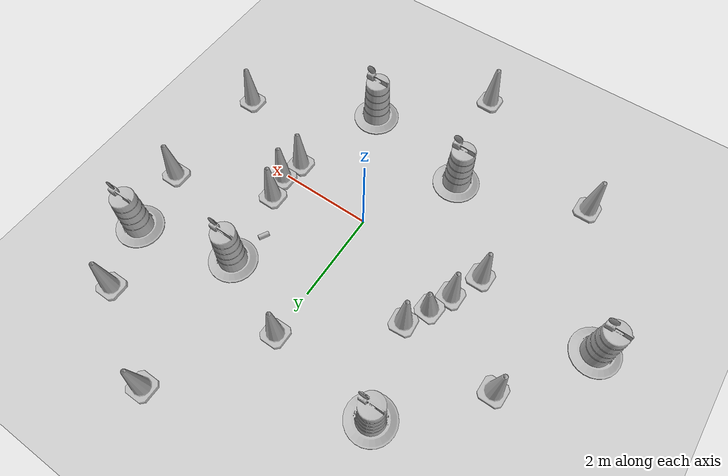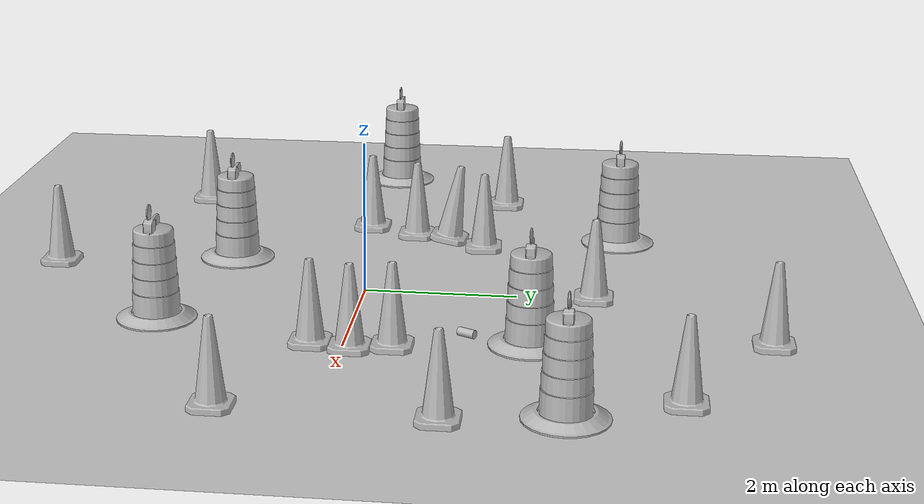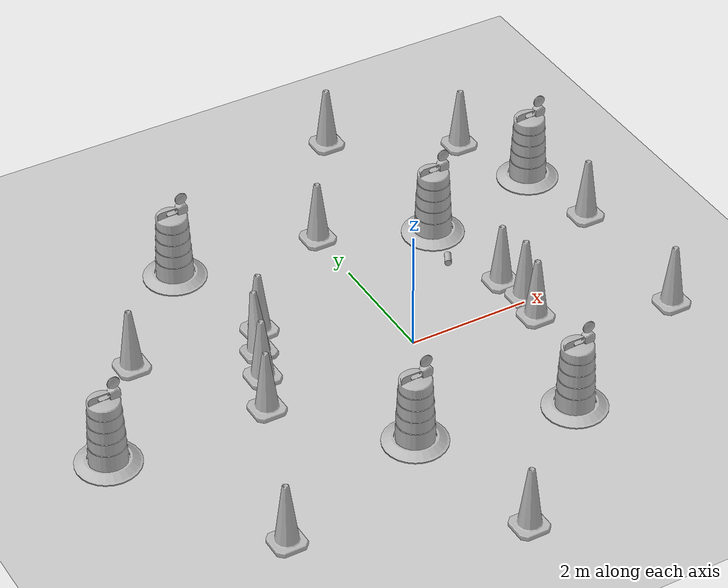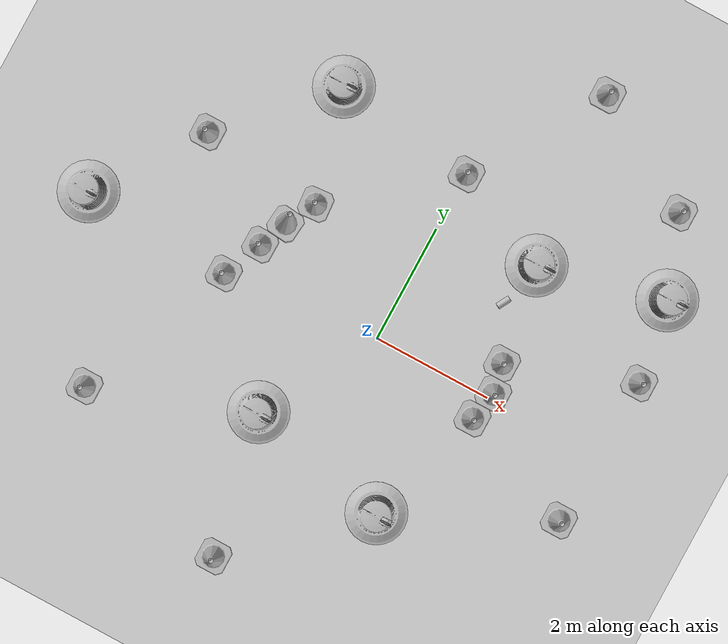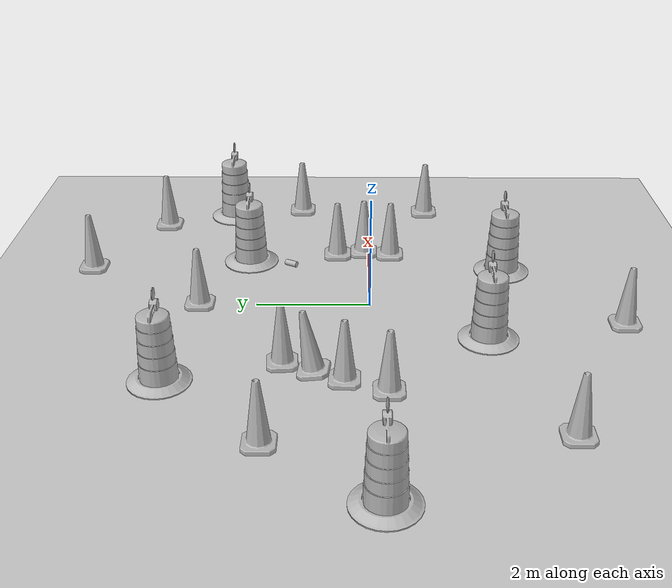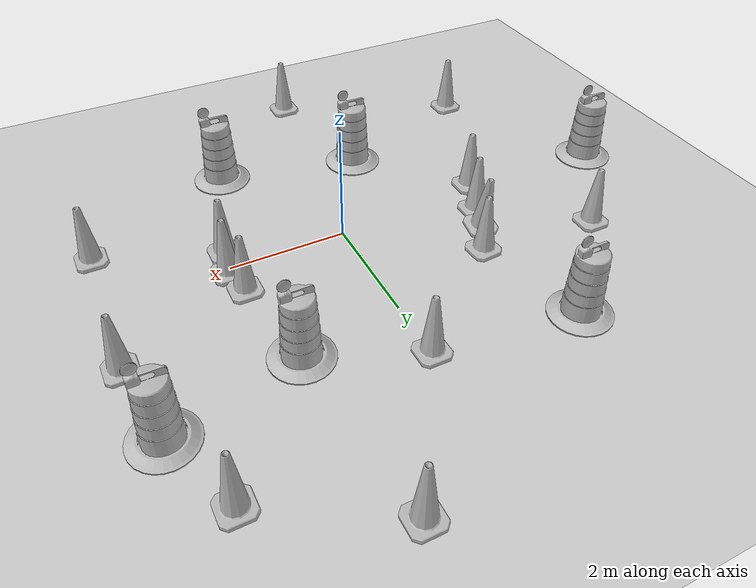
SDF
<sdf version="1.7">
 <world name="default">
  <light name="sun" type="directional">
   <pose>0 0 10 0 -0 0</pose>
   <diffuse>0.8 0.8 0.8 1</diffuse>
   <specular>0.2 0.2 0.2 1</specular>
   <attenuation>
    <range>1000</range>
    <constant>0.9</constant>
    <linear>0.01</linear>
    <quadratic>0.001</quadratic>
   </attenuation>
   <direction>-0.5 0.1 -0.9</direction>
   <spot><inner_angle>0</inner_angle><outer_angle>0</outer_angle><falloff>0</falloff></spot>
  </light>
  <model name="ground_plane">
   <static>1</static>
   <link name="link">
    <collision name="collision">
     <geometry><plane><normal>0 0 1</normal><size>100 100</size></plane></geometry>
     <surface>
      <contact><collide_bitmask>65535</collide_bitmask></contact>
      <friction><ode><mu>100</mu><mu2>50</mu2></ode></friction>
     </surface>
    </collision>
    <visual name="visual">
     <cast_shadows>0</cast_shadows>
     <geometry><plane><normal>0 0 1</normal><size>100 100</size></plane></geometry>
     <material>
      <script><uri>file://media/materials/scripts/gazebo.material</uri><name>Gazebo/Grey</name></script>
     </material>
    </visual>
   </link>
  </model>
  <gravity>0 0 -9.8</gravity>
  <magnetic_field>6e-06 2.3e-05 -4.2e-05</magnetic_field>
  <atmosphere type="adiabatic"/>
  <physics type="ode">
   <max_step_size>0.001</max_step_size>
   <real_time_factor>1</real_time_factor>
   <real_time_update_rate>1000</real_time_update_rate>
  </physics>
  <scene><ambient>0.4 0.4 0.4 1</ambient><background>0.7 0.7 0.7 1</background><shadows>1</shadows></scene>
  <audio><device>default</device></audio>
  <spherical_coordinates>
   <surface_model>EARTH_WGS84</surface_model>
   <latitude_deg>0</latitude_deg>
   <longitude_deg>0</longitude_deg>
   <elevation>0</elevation>
   <heading_deg>0</heading_deg>
  </spherical_coordinates>
  <model name="Construction Cone">
   <link name="link">
    <collision name="collision">
     <geometry>
      <mesh><scale>10 10 10</scale><uri>model://construction_cone/meshes/construction_cone.dae</uri></mesh>
     </geometry>
    </collision>
    <visual name="visual">
     <geometry>
      <mesh><scale>10 10 10</scale><uri>model://construction_cone/meshes/construction_cone.dae</uri></mesh>
     </geometry>
    </visual>
    <inertial>
     <inertia><ixx>1</ixx><ixy>0</ixy><ixz>0</ixz><iyy>1</iyy><iyz>0</iyz><izz>1</izz></inertia>
     <mass>1</mass>
    </inertial>
   </link>
   <pose>-2.6621 -0.255235 -1e-05 0 -0 0</pose>
  </model>
  <model name="Construction Cone_0">
   <link name="link">
    <collision name="collision">
     <geometry>
      <mesh><scale>10 10 10</scale><uri>model://construction_cone/meshes/construction_cone.dae</uri></mesh>
     </geometry>
    </collision>
    <visual name="visual">
     <geometry>
      <mesh><scale>10 10 10</scale><uri>model://construction_cone/meshes/construction_cone.dae</uri></mesh>
     </geometry>
    </visual>
    <inertial>
     <inertia><ixx>1</ixx><ixy>0</ixy><ixz>0</ixz><iyy>1</iyy><iyz>0</iyz><izz>1</izz></inertia>
     <mass>1</mass>
    </inertial>
   </link>
   <pose>-1.89661 1.42408 -3e-06 -3e-06 -1e-06 0.077578</pose>
  </model>
  <model name="Construction Cone_1">
   <link name="link">
    <collision name="collision">
     <geometry>
      <mesh><scale>10 10 10</scale><uri>model://construction_cone/meshes/construction_cone.dae</uri></mesh>
     </geometry>
    </collision>
    <visual name="visual">
     <geometry>
      <mesh><scale>10 10 10</scale><uri>model://construction_cone/meshes/construction_cone.dae</uri></mesh>
     </geometry>
    </visual>
    <inertial>
     <inertia><ixx>1</ixx><ixy>0</ixy><ixz>0</ixz><iyy>1</iyy><iyz>0</iyz><izz>1</izz></inertia>
     <mass>1</mass>
    </inertial>
   </link>
   <pose>-0 3 -6e-06 2e-06 -0 0</pose>
  </model>
  <model name="Construction Barrel">
   <link name="link">
    <inertial>
     <pose>0 0 0.4 0 -0 0</pose>
     <mass>500</mass>
     <inertia><ixx>51.2096</ixx><iyy>51.2096</iyy><izz>25</izz><ixy>0</ixy><ixz>0</ixz><iyz>0</iyz></inertia>
    </inertial>
    <collision name="collision">
     <geometry><mesh><uri>model://construction_barrel/meshes/construction_barrel.dae</uri></mesh></geometry>
    </collision>
    <visual name="visual">
     <geometry><mesh><uri>model://construction_barrel/meshes/construction_barrel.dae</uri></mesh></geometry>
    </visual>
   </link>
   <pose>-1.11278 -1.94679 -0 0 -0 -3.1e-05</pose>
  </model>
  <model name="Construction Cone_2">
   <link name="link">
    <collision name="collision">
     <geometry>
      <mesh><scale>10 10 10</scale><uri>model://construction_cone/meshes/construction_cone.dae</uri></mesh>
     </geometry>
    </collision>
    <visual name="visual">
     <geometry>
      <mesh><scale>10 10 10</scale><uri>model://construction_cone/meshes/construction_cone.dae</uri></mesh>
     </geometry>
    </visual>
    <inertial>
     <inertia><ixx>1</ixx><ixy>0</ixy><ixz>0</ixz><iyy>1</iyy><iyz>0</iyz><izz>1</izz></inertia>
     <mass>1</mass>
    </inertial>
   </link>
   <pose>2.05906 0.103009 -1e-06 1e-06 -2e-06 0.000524</pose>
  </model>
  <model name="Construction Cone_3">
   <link name="link">
    <collision name="collision">
     <geometry>
      <mesh><scale>10 10 10</scale><uri>model://construction_cone/meshes/construction_cone.dae</uri></mesh>
     </geometry>
    </collision>
    <visual name="visual">
     <geometry>
      <mesh><scale>10 10 10</scale><uri>model://construction_cone/meshes/construction_cone.dae</uri></mesh>
     </geometry>
    </visual>
    <inertial>
     <inertia><ixx>1</ixx><ixy>0</ixy><ixz>0</ixz><iyy>1</iyy><iyz>0</iyz><izz>1</izz></inertia>
     <mass>1</mass>
    </inertial>
   </link>
   <pose>1.95282 -0.399987 -0 0 -0 0.000577</pose>
  </model>
  <model name="Construction Cone_4">
   <link name="link">
    <collision name="collision">
     <geometry>
      <mesh><scale>10 10 10</scale><uri>model://construction_cone/meshes/construction_cone.dae</uri></mesh>
     </geometry>
    </collision>
    <visual name="visual">
     <geometry>
      <mesh><scale>10 10 10</scale><uri>model://construction_cone/meshes/construction_cone.dae</uri></mesh>
     </geometry>
    </visual>
    <inertial>
     <inertia><ixx>1</ixx><ixy>0</ixy><ixz>0</ixz><iyy>1</iyy><iyz>0</iyz><izz>1</izz></inertia>
     <mass>1</mass>
    </inertial>
   </link>
   <pose>1.94738 0.60596 -0 0 -1e-06 4e-06</pose>
  </model>
  <model name="Construction Barrel_0">
   <link name="link">
    <inertial>
     <pose>0 0 0.4 0 -0 0</pose>
     <mass>500</mass>
     <inertia><ixx>51.2096</ixx><iyy>51.2096</iyy><izz>25</izz><ixy>0</ixy><ixz>0</ixz><iyz>0</iyz></inertia>
    </inertial>
    <collision name="collision">
     <geometry><mesh><uri>model://construction_barrel/meshes/construction_barrel.dae</uri></mesh></geometry>
    </collision>
    <visual name="visual">
     <geometry><mesh><uri>model://construction_barrel/meshes/construction_barrel.dae</uri></mesh></geometry>
    </visual>
   </link>
   <pose>1.32332 -2.47314 -0 0 -0 -2.8e-05</pose>
  </model>
  <model name="beer">
   <link name="link">
    <pose>0 0 0.115 0 -0 0</pose>
    <inertial>
     <mass>0.39</mass>
     <inertia><ixx>0.00058</ixx><ixy>0</ixy><ixz>0</ixz><iyy>0.00058</iyy><iyz>0</iyz><izz>0.00019</izz></inertia>
    </inertial>
    <collision name="collision">
     <geometry><cylinder><radius>0.055</radius><length>0.23</length></cylinder></geometry>
    </collision>
    <visual name="visual">
     <geometry><cylinder><radius>0.055</radius><length>0.23</length></cylinder></geometry>
     <material>
      <script>
       <uri>model://beer/materials/scripts</uri>
       <uri>model://beer/materials/textures</uri>
       <name>Beer/Diffuse</name>
      </script>
     </material>
    </visual>
   </link>
   <pose>1.55914 1.57489 0.055 1.57117 0.813633 -0.500764</pose>
  </model>
  <model name="Construction Barrel_1">
   <link name="link">
    <inertial>
     <pose>0 0 0.4 0 -0 0</pose>
     <mass>500</mass>
     <inertia><ixx>51.2096</ixx><iyy>51.2096</iyy><izz>25</izz><ixy>0</ixy><ixz>0</ixz><iyz>0</iyz></inertia>
    </inertial>
    <collision name="collision">
     <geometry><mesh><uri>model://construction_barrel/meshes/construction_barrel.dae</uri></mesh></geometry>
    </collision>
    <visual name="visual">
     <geometry><mesh><uri>model://construction_barrel/meshes/construction_barrel.dae</uri></mesh></geometry>
    </visual>
   </link>
   <pose>-2.39913 3.29614 -0 0 -0 -2.1e-05</pose>
  </model>
  <model name="Construction Cone_5">
   <link name="link">
    <collision name="collision">
     <geometry>
      <mesh><scale>10 10 10</scale><uri>model://construction_cone/meshes/construction_cone.dae</uri></mesh>
     </geometry>
    </collision>
    <visual name="visual">
     <geometry>
      <mesh><scale>10 10 10</scale><uri>model://construction_cone/meshes/construction_cone.dae</uri></mesh>
     </geometry>
    </visual>
    <inertial>
     <inertia><ixx>1</ixx><ixy>0</ixy><ixz>0</ixz><iyy>1</iyy><iyz>0</iyz><izz>1</izz></inertia>
     <mass>1</mass>
    </inertial>
   </link>
   <pose>3.29204 4.08096 -1e-05 0 -0 0</pose>
  </model>
  <model name="Construction Cone_6">
   <link name="link">
    <collision name="collision">
     <geometry>
      <mesh><scale>10 10 10</scale><uri>model://construction_cone/meshes/construction_cone.dae</uri></mesh>
     </geometry>
    </collision>
    <visual name="visual">
     <geometry>
      <mesh><scale>10 10 10</scale><uri>model://construction_cone/meshes/construction_cone.dae</uri></mesh>
     </geometry>
    </visual>
    <inertial>
     <inertia><ixx>1</ixx><ixy>0</ixy><ixz>0</ixz><iyy>1</iyy><iyz>0</iyz><izz>1</izz></inertia>
     <mass>1</mass>
    </inertial>
   </link>
   <pose>4.03498 1.37355 -0 0 -0 0</pose>
  </model>
  <model name="Construction Cone_7">
   <link name="link">
    <collision name="collision">
     <geometry>
      <mesh><scale>10 10 10</scale><uri>model://construction_cone/meshes/construction_cone.dae</uri></mesh>
     </geometry>
    </collision>
    <visual name="visual">
     <geometry>
      <mesh><scale>10 10 10</scale><uri>model://construction_cone/meshes/construction_cone.dae</uri></mesh>
     </geometry>
    </visual>
    <inertial>
     <inertia><ixx>1</ixx><ixy>0</ixy><ixz>0</ixz><iyy>1</iyy><iyz>0</iyz><izz>1</izz></inertia>
     <mass>1</mass>
    </inertial>
   </link>
   <pose>-2.36994 0.428093 -9e-06 -0 -0 -0.007395</pose>
  </model>
  <model name="Construction Barrel_2">
   <link name="link">
    <inertial>
     <pose>0 0 0.4 0 -0 0</pose>
     <mass>500</mass>
     <inertia><ixx>51.2096</ixx><iyy>51.2096</iyy><izz>25</izz><ixy>0</ixy><ixz>0</ixz><iyz>0</iyz></inertia>
    </inertial>
    <collision name="collision">
     <geometry><mesh><uri>model://construction_barrel/meshes/construction_barrel.dae</uri></mesh></geometry>
    </collision>
    <visual name="visual">
     <geometry><mesh><uri>model://construction_barrel/meshes/construction_barrel.dae</uri></mesh></geometry>
    </visual>
   </link>
   <pose>1.68693 2.24944 -2e-06 8e-06 -4e-06 0.00011</pose>
  </model>
  <model name="Construction Cone_8">
   <link name="link">
    <collision name="collision">
     <geometry>
      <mesh><scale>10 10 10</scale><uri>model://construction_cone/meshes/construction_cone.dae</uri></mesh>
     </geometry>
    </collision>
    <visual name="visual">
     <geometry>
      <mesh><scale>10 10 10</scale><uri>model://construction_cone/meshes/construction_cone.dae</uri></mesh>
     </geometry>
    </visual>
    <inertial>
     <inertia><ixx>1</ixx><ixy>0</ixy><ixz>0</ixz><iyy>1</iyy><iyz>0</iyz><izz>1</izz></inertia>
     <mass>1</mass>
    </inertial>
   </link>
   <pose>-2.17186 0.908162 0.038488 -0.153682 -1.7e-05 -0.094788</pose>
  </model>
  <model name="Construction Cone_9">
   <link name="link">
    <collision name="collision">
     <geometry>
      <mesh><scale>10 10 10</scale><uri>model://construction_cone/meshes/construction_cone.dae</uri></mesh>
     </geometry>
    </collision>
    <visual name="visual">
     <geometry>
      <mesh><scale>10 10 10</scale><uri>model://construction_cone/meshes/construction_cone.dae</uri></mesh>
     </geometry>
    </visual>
    <inertial>
     <inertia><ixx>1</ixx><ixy>0</ixy><ixz>0</ixz><iyy>1</iyy><iyz>0</iyz><izz>1</izz></inertia>
     <mass>1</mass>
    </inertial>
   </link>
   <pose>-0.644358 -4.32449 -0 0 -0 0</pose>
  </model>
  <model name="Construction Cone_10">
   <link name="link">
    <collision name="collision">
     <geometry>
      <mesh><scale>10 10 10</scale><uri>model://construction_cone/meshes/construction_cone.dae</uri></mesh>
     </geometry>
    </collision>
    <visual name="visual">
     <geometry>
      <mesh><scale>10 10 10</scale><uri>model://construction_cone/meshes/construction_cone.dae</uri></mesh>
     </geometry>
    </visual>
    <inertial>
     <inertia><ixx>1</ixx><ixy>0</ixy><ixz>0</ixz><iyy>1</iyy><iyz>0</iyz><izz>1</izz></inertia>
     <mass>1</mass>
    </inertial>
   </link>
   <pose>1.38322 5.19399 -6e-06 -4e-06 0 0</pose>
  </model>
  <model name="Construction Cone_11">
   <link name="link">
    <collision name="collision">
     <geometry>
      <mesh><scale>10 10 10</scale><uri>model://construction_cone/meshes/construction_cone.dae</uri></mesh>
     </geometry>
    </collision>
    <visual name="visual">
     <geometry>
      <mesh><scale>10 10 10</scale><uri>model://construction_cone/meshes/construction_cone.dae</uri></mesh>
     </geometry>
    </visual>
    <inertial>
     <inertia><ixx>1</ixx><ixy>0</ixy><ixz>0</ixz><iyy>1</iyy><iyz>0</iyz><izz>1</izz></inertia>
     <mass>1</mass>
    </inertial>
   </link>
   <pose>-3.76529 -2.9104 -6e-06 -4e-06 0 0</pose>
  </model>
  <model name="Construction Barrel_3">
   <link name="link">
    <inertial>
     <pose>0 0 0.4 0 -0 0</pose>
     <mass>500</mass>
     <inertia><ixx>51.2096</ixx><iyy>51.2096</iyy><izz>25</izz><ixy>0</ixy><ixz>0</ixz><iyz>0</iyz></inertia>
    </inertial>
    <collision name="collision">
     <geometry><mesh><uri>model://construction_barrel/meshes/construction_barrel.dae</uri></mesh></geometry>
    </collision>
    <visual name="visual">
     <geometry><mesh><uri>model://construction_barrel/meshes/construction_barrel.dae</uri></mesh></geometry>
    </visual>
   </link>
   <pose>-5.20026 -0.133748 -1e-06 3e-06 1e-05 -7e-06</pose>
  </model>
  <model name="Construction Cone_12">
   <link name="link">
    <collision name="collision">
     <geometry>
      <mesh><scale>10 10 10</scale><uri>model://construction_cone/meshes/construction_cone.dae</uri></mesh>
     </geometry>
    </collision>
    <visual name="visual">
     <geometry>
      <mesh><scale>10 10 10</scale><uri>model://construction_cone/meshes/construction_cone.dae</uri></mesh>
     </geometry>
    </visual>
    <inertial>
     <inertia><ixx>1</ixx><ixy>0</ixy><ixz>0</ixz><iyy>1</iyy><iyz>0</iyz><izz>1</izz></inertia>
     <mass>1</mass>
    </inertial>
   </link>
   <pose>3.95229 -1.1759 -4e-06 4e-06 -1e-06 0</pose>
  </model>
  <model name="Construction Barrel_4">
   <link name="link">
    <inertial>
     <pose>0 0 0.4 0 -0 0</pose>
     <mass>500</mass>
     <inertia><ixx>51.2096</ixx><iyy>51.2096</iyy><izz>25</izz><ixy>0</ixy><ixz>0</ixz><iyz>0</iyz></inertia>
    </inertial>
    <collision name="collision">
     <geometry><mesh><uri>model://construction_barrel/meshes/construction_barrel.dae</uri></mesh></geometry>
    </collision>
    <visual name="visual">
     <geometry><mesh><uri>model://construction_barrel/meshes/construction_barrel.dae</uri></mesh></geometry>
    </visual>
   </link>
   <pose>3.79725 2.75705 0 0 0 -3e-06</pose>
  </model>
  <model name="Construction Cone_13">
   <link name="link">
    <collision name="collision">
     <geometry>
      <mesh><scale>10 10 10</scale><uri>model://construction_cone/meshes/construction_cone.dae</uri></mesh>
     </geometry>
    </collision>
    <visual name="visual">
     <geometry>
      <mesh><scale>10 10 10</scale><uri>model://construction_cone/meshes/construction_cone.dae</uri></mesh>
     </geometry>
    </visual>
    <inertial>
     <inertia><ixx>1</ixx><ixy>0</ixy><ixz>0</ixz><iyy>1</iyy><iyz>0</iyz><izz>1</izz></inertia>
     <mass>1</mass>
    </inertial>
   </link>
   <pose>-3.97027 1.61508 -0 0 -1e-06 0</pose>
  </model>
 </world>
</sdf>
